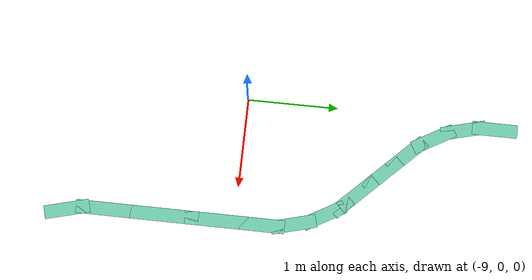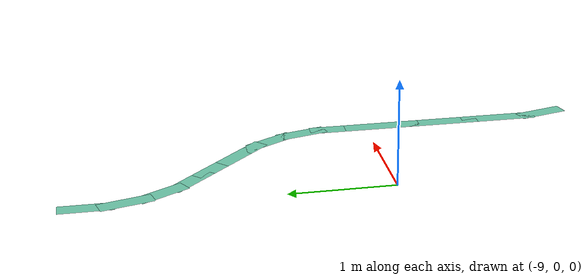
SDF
<sdf version="1.6">
 <model name="pomdp_path">
  <pose>0.697999 -0.110454 0 0 -0 0</pose>
  <link name="Wall_133">
   <collision name="Wall_133_Collision">
    <geometry><box><size>0.5 0.15 0</size></box></geometry>
    <pose>0 0 0.0001 0 -0 0</pose>
   </collision>
   <visual name="Wall_133_Visual">
    <pose>0 0 0.0001 0 -0 0</pose>
    <geometry><box><size>0.5 0.15 0</size></box></geometry>
    <material>
     <script><uri>file://media/materials/scripts/gazebo.material</uri><name>Gazebo/Grey</name></script>
     <ambient>0.435294 0.796078 0.67451 1</ambient>
    </material>
    <meta><layer>0</layer></meta>
   </visual>
   <pose>-9.64253 2.85698 0 0 -0 -1.5708</pose>
  </link>
  <link name="Wall_134">
   <collision name="Wall_134_Collision">
    <geometry><box><size>0.5 0.15 0</size></box></geometry>
    <pose>0 0 0.0001 0 -0 0</pose>
   </collision>
   <visual name="Wall_134_Visual">
    <pose>0 0 0.0001 0 -0 0</pose>
    <geometry><box><size>0.5 0.15 0</size></box></geometry>
    <material>
     <script><uri>file://media/materials/scripts/gazebo.material</uri><name>Gazebo/Grey</name></script>
     <ambient>0.435294 0.796078 0.67451 1</ambient>
    </material>
    <meta><layer>0</layer></meta>
   </visual>
   <pose>-9.59724 2.51294 0 0 -0 -1.309</pose>
  </link>
  <link name="Wall_135">
   <collision name="Wall_135_Collision">
    <geometry><box><size>0.5 0.15 0</size></box></geometry>
    <pose>0 0 0.0001 0 -0 0</pose>
   </collision>
   <visual name="Wall_135_Visual">
    <pose>0 0 0.0001 0 -0 0</pose>
    <geometry><box><size>0.5 0.15 0</size></box></geometry>
    <material>
     <script><uri>file://media/materials/scripts/gazebo.material</uri><name>Gazebo/Grey</name></script>
     <ambient>0.435294 0.796078 0.67451 1</ambient>
    </material>
    <meta><layer>0</layer></meta>
   </visual>
   <pose>-9.46444 2.19235 0 0 -0 -1.0472</pose>
  </link>
  <link name="Wall_136">
   <collision name="Wall_136_Collision">
    <geometry><box><size>0.5 0.15 0</size></box></geometry>
    <pose>0 0 0.0001 0 -0 0</pose>
   </collision>
   <visual name="Wall_136_Visual">
    <pose>0 0 0.0001 0 -0 0</pose>
    <geometry><box><size>0.5 0.15 0</size></box></geometry>
    <material>
     <script><uri>file://media/materials/scripts/gazebo.material</uri><name>Gazebo/Grey</name></script>
     <ambient>0.435294 0.796078 0.67451 1</ambient>
    </material>
    <meta><layer>0</layer></meta>
   </visual>
   <pose>-9.2532 1.91705 0 0 -0 -0.785398</pose>
  </link>
  <link name="Wall_137">
   <collision name="Wall_137_Collision">
    <geometry><box><size>0.5 0.15 0</size></box></geometry>
    <pose>0 0 0.0001 0 -0 0</pose>
   </collision>
   <visual name="Wall_137_Visual">
    <pose>0 0 0.0001 0 -0 0</pose>
    <geometry><box><size>0.5 0.15 0</size></box></geometry>
    <material>
     <script><uri>file://media/materials/scripts/gazebo.material</uri><name>Gazebo/Grey</name></script>
     <ambient>0.435294 0.796078 0.67451 1</ambient>
    </material>
    <meta><layer>0</layer></meta>
   </visual>
   <pose>-9.00571 1.66956 0 0 -0 -0.785398</pose>
  </link>
  <link name="Wall_138">
   <collision name="Wall_138_Collision">
    <geometry><box><size>0.5 0.15 0</size></box></geometry>
    <pose>0 0 0.0001 0 -0 0</pose>
   </collision>
   <visual name="Wall_138_Visual">
    <pose>0 0 0.0001 0 -0 0</pose>
    <geometry><box><size>0.5 0.15 0</size></box></geometry>
    <material>
     <script><uri>file://media/materials/scripts/gazebo.material</uri><name>Gazebo/Grey</name></script>
     <ambient>0.435294 0.796078 0.67451 1</ambient>
    </material>
    <meta><layer>0</layer></meta>
   </visual>
   <pose>-8.75822 1.42208 0 0 -0 -0.785398</pose>
  </link>
  <link name="Wall_148">
   <collision name="Wall_148_Collision">
    <geometry><box><size>0.25 0.15 0</size></box></geometry>
    <pose>0 0 0.0001 0 -0 0</pose>
   </collision>
   <visual name="Wall_148_Visual">
    <pose>0 0 0.0001 0 -0 0</pose>
    <geometry><box><size>0.25 0.15 0</size></box></geometry>
    <material>
     <script><uri>file://media/materials/scripts/gazebo.material</uri><name>Gazebo/Grey</name></script>
     <ambient>0.435294 0.796078 0.67451 1</ambient>
    </material>
    <meta><layer>0</layer></meta>
   </visual>
   <pose>-8.59913 1.26298 0 0 -0 -0.785398</pose>
  </link>
  <link name="Wall_149">
   <collision name="Wall_149_Collision">
    <geometry><box><size>0.5 0.15 0</size></box></geometry>
    <pose>0 0 0.0001 0 -0 0</pose>
   </collision>
   <visual name="Wall_149_Visual">
    <pose>0 0 0.0001 0 -0 0</pose>
    <geometry><box><size>0.5 0.15 0</size></box></geometry>
    <material>
     <script><uri>file://media/materials/scripts/gazebo.material</uri><name>Gazebo/Grey</name></script>
     <ambient>0.435294 0.796078 0.67451 1</ambient>
    </material>
    <meta><layer>0</layer></meta>
   </visual>
   <pose>-8.47627 1.07607 0 0 -0 -1.0472</pose>
  </link>
  <link name="Wall_150">
   <collision name="Wall_150_Collision">
    <geometry><box><size>0.5 0.15 0</size></box></geometry>
    <pose>0 0 0.0001 0 -0 0</pose>
   </collision>
   <visual name="Wall_150_Visual">
    <pose>0 0 0.0001 0 -0 0</pose>
    <geometry><box><size>0.5 0.15 0</size></box></geometry>
    <material>
     <script><uri>file://media/materials/scripts/gazebo.material</uri><name>Gazebo/Grey</name></script>
     <ambient>0.435294 0.796078 0.67451 1</ambient>
    </material>
    <meta><layer>0</layer></meta>
   </visual>
   <pose>-8.34348 0.755476 0 0 -0 -1.309</pose>
  </link>
  <link name="Wall_151">
   <collision name="Wall_151_Collision">
    <geometry><box><size>0.5 0.15 0</size></box></geometry>
    <pose>0 0 0.0001 0 -0 0</pose>
   </collision>
   <visual name="Wall_151_Visual">
    <pose>0 0 0.0001 0 -0 0</pose>
    <geometry><box><size>0.5 0.15 0</size></box></geometry>
    <material>
     <script><uri>file://media/materials/scripts/gazebo.material</uri><name>Gazebo/Grey</name></script>
     <ambient>0.435294 0.796078 0.67451 1</ambient>
    </material>
    <meta><layer>0</layer></meta>
   </visual>
   <pose>-8.29818 0.411439 0 0 -0 -1.5708</pose>
  </link>
  <link name="Wall_153">
   <collision name="Wall_153_Collision">
    <geometry><box><size>0.75 0.15 0</size></box></geometry>
    <pose>0 0 0.0001 0 -0 0</pose>
   </collision>
   <visual name="Wall_153_Visual">
    <pose>0 0 0.0001 0 -0 0</pose>
    <geometry><box><size>0.75 0.15 0</size></box></geometry>
    <material>
     <script><uri>file://media/materials/scripts/gazebo.material</uri><name>Gazebo/Grey</name></script>
     <ambient>0.435294 0.796078 0.67451 1</ambient>
    </material>
    <meta><layer>0</layer></meta>
   </visual>
   <pose>-8.29818 -0.063561 0 0 -0 -1.5708</pose>
  </link>
  <link name="Wall_154">
   <collision name="Wall_154_Collision">
    <geometry><box><size>0.75 0.15 0</size></box></geometry>
    <pose>0 0 0.0001 0 -0 0</pose>
   </collision>
   <visual name="Wall_154_Visual">
    <pose>0 0 0.0001 0 -0 0</pose>
    <geometry><box><size>0.75 0.15 0</size></box></geometry>
    <material>
     <script><uri>file://media/materials/scripts/gazebo.material</uri><name>Gazebo/Grey</name></script>
     <ambient>0.435294 0.796078 0.67451 1</ambient>
    </material>
    <meta><layer>0</layer></meta>
   </visual>
   <pose>-8.29818 -0.663561 0 0 -0 -1.5708</pose>
  </link>
  <link name="Wall_156">
   <collision name="Wall_156_Collision">
    <geometry><box><size>0.75 0.15 0</size></box></geometry>
    <pose>0 0 0.0001 0 -0 0</pose>
   </collision>
   <visual name="Wall_156_Visual">
    <pose>0 0 0.0001 0 -0 0</pose>
    <geometry><box><size>0.75 0.15 0</size></box></geometry>
    <material>
     <script><uri>file://media/materials/scripts/gazebo.material</uri><name>Gazebo/Grey</name></script>
     <ambient>0.435294 0.796078 0.67451 1</ambient>
    </material>
    <meta><layer>0</layer></meta>
   </visual>
   <pose>-8.29818 -1.26356 0 0 -0 -1.5708</pose>
  </link>
  <link name="Wall_157">
   <collision name="Wall_157_Collision">
    <geometry><box><size>0.5 0.15 0</size></box></geometry>
    <pose>0 0 0.0001 0 -0 0</pose>
   </collision>
   <visual name="Wall_157_Visual">
    <pose>0 0 0.0001 0 -0 0</pose>
    <geometry><box><size>0.5 0.15 0</size></box></geometry>
    <material>
     <script><uri>file://media/materials/scripts/gazebo.material</uri><name>Gazebo/Grey</name></script>
     <ambient>0.435294 0.796078 0.67451 1</ambient>
    </material>
    <meta><layer>0</layer></meta>
   </visual>
   <pose>-8.25289 -1.7326 0 0 -0 -1.309</pose>
  </link>
  <static>1</static>
 </model>
</sdf>
